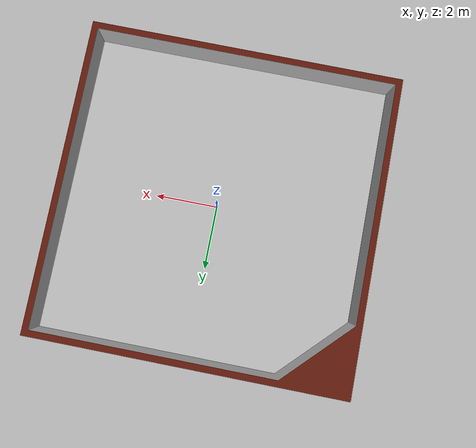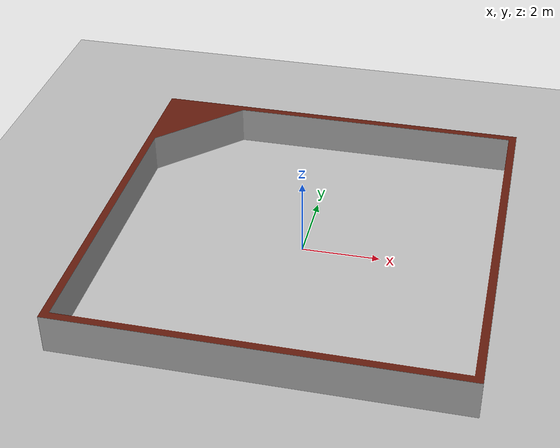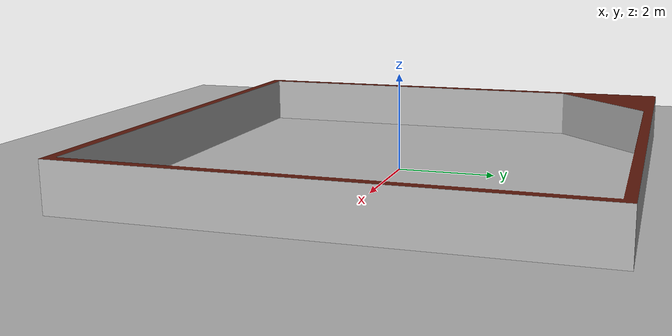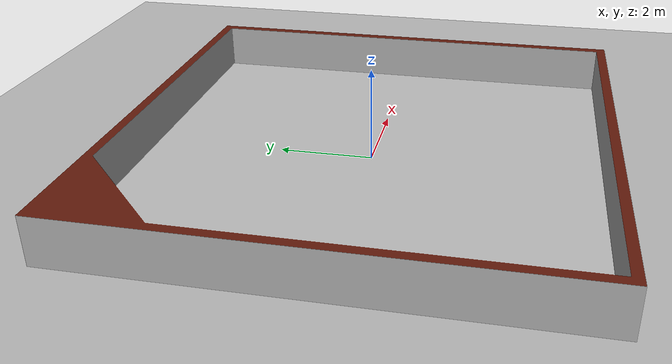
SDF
<sdf version="1.7">
 <world name="default">
  <plugin filename="gz-sim-physics-system" name="gz::sim::systems::Physics"/>
  <plugin filename="gz-sim-user-commands-system" name="gz::sim::systems::UserCommands"/>
  <plugin filename="gz-sim-scene-broadcaster-system" name="gz::sim::systems::SceneBroadcaster"/>
  <light name="sun" type="point">
   <cast_shadows>0</cast_shadows>
   <pose>0 0 10 0 0 0</pose>
   <diffuse>0.8 0.8 0.8 1</diffuse>
   <specular>0.2 0.2 0.2 1</specular>
   <attenuation>
    <range>1000</range>
    <constant>0.9</constant>
    <linear>0.01</linear>
    <quadratic>0.001</quadratic>
   </attenuation>
  </light>
  <model name="ground_plane">
   <static>1</static>
   <link name="link">
    <collision name="collision">
     <geometry><plane><normal>0 0 1</normal><size>100 100</size></plane></geometry>
     <surface>
      <contact><collide_bitmask>65535</collide_bitmask></contact>
      <friction><ode><mu>100</mu><mu2>50</mu2></ode></friction>
     </surface>
    </collision>
    <visual name="visual">
     <cast_shadows>0</cast_shadows>
     <geometry><plane><normal>0 0 1</normal><size>100 100</size></plane></geometry>
     <material>
      <ambient>0.3 0.3 0.3 1.0</ambient>
      <diffuse>0.7 0.7 0.7 1.0</diffuse>
      <specular>0.01 0.01 0.01 1.0</specular>
      <shininess>1.5</shininess>
     </material>
    </visual>
   </link>
  </model>
  <gravity>0 0 -9.8</gravity>
  <magnetic_field>6e-06 2.3e-05 -4.2e-05</magnetic_field>
  <atmosphere type="adiabatic"/>
  <physics type="ode">
   <max_step_size>0.001</max_step_size>
   <real_time_factor>1</real_time_factor>
   <real_time_update_rate>1000</real_time_update_rate>
  </physics>
  <scene><ambient>0.4 0.4 0.4 1</ambient><background>0.7 0.7 0.7 1</background><shadows>1</shadows></scene>
  <audio><device>default</device></audio>
  <spherical_coordinates>
   <surface_model>EARTH_WGS84</surface_model>
   <latitude_deg>0</latitude_deg>
   <longitude_deg>0</longitude_deg>
   <elevation>0</elevation>
   <heading_deg>0</heading_deg>
  </spherical_coordinates>
  <include><uri>model://beluga_demo_gazebo/models/playground</uri></include>
 </world>
</sdf>

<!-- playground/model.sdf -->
<sdf version='1.7'>
  <model name='playground'>
    <link name='link'>
      <collision name='collision'>
        <max_contacts>10</max_contacts>
        <geometry>
          <mesh>
            <uri>meshes/playground.dae</uri>
            <scale>1 1 1</scale>
          </mesh>
        </geometry>
        <surface>
          <contact>
            <ode/>
          </contact>
          <bounce/>
          <friction>
            <torsional>
              <ode/>
            </torsional>
            <ode/>
          </friction>
        </surface>
      </collision>
      <visual name='visual'>
        <geometry>
          <mesh>
            <uri>meshes/playground.dae</uri>
            <scale>1 1 1</scale>
          </mesh>
        </geometry>
      </visual>
      <self_collide>0</self_collide>
      <enable_wind>0</enable_wind>
      <kinematic>0</kinematic>
    </link>
    <static>1</static>
  </model>
</sdf>
